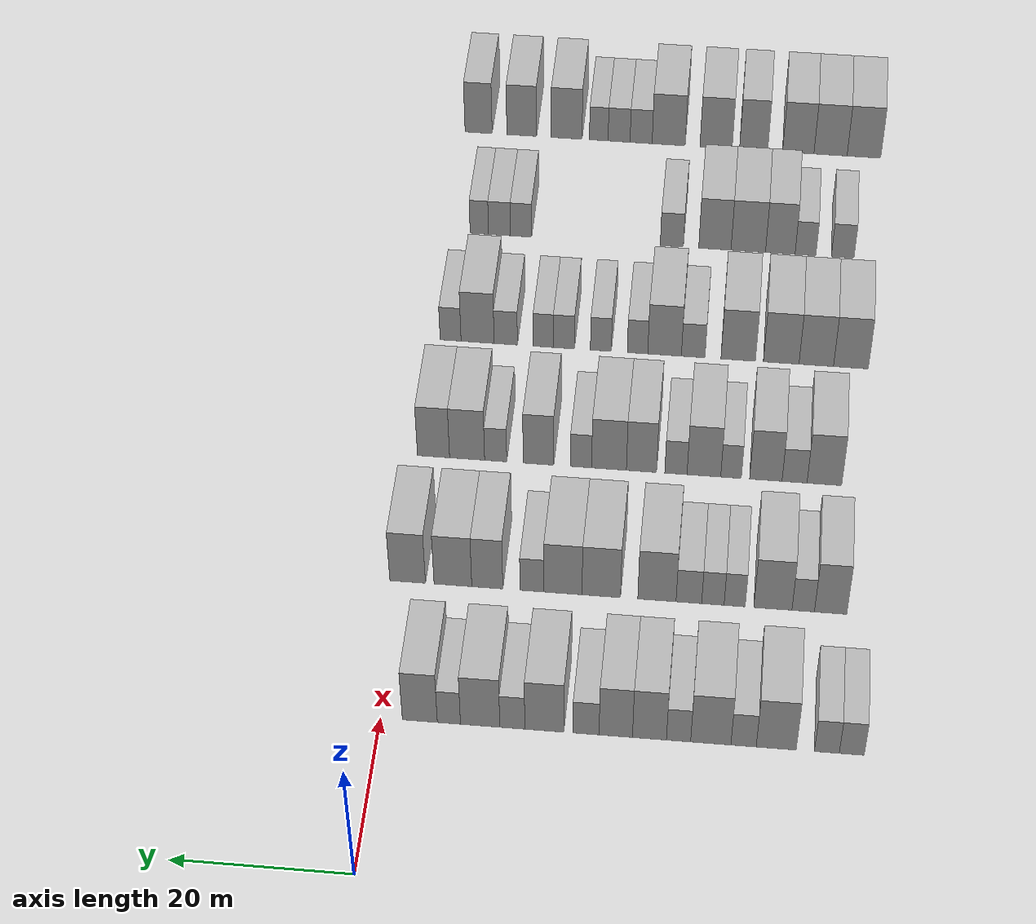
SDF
<sdf version="1.6">
 <world name="default">
  <model name="building_80">
   <static>1</static>
   <pose>25.0000 -52.2230 0 0.000000 0.000000 0.000000</pose>
   <link name="link">
    <pose>0 0 3.00 0 0 0</pose>
    <collision name="collision"><geometry><box><size>10.0000 2.7459 6.0000</size></box></geometry></collision>
    <visual name="visual">
     <cast_shadows>0</cast_shadows>
     <geometry><box><size>10.0000 2.7459 6.0000</size></box></geometry>
     <material>
      <script>
       <uri>model://HANNAS_wall/materials/scripts</uri>
       <uri>model://HANNAS_wall/materials/textures</uri>
       <name>vrc/HANNAS_wall</name>
      </script>
     </material>
    </visual>
   </link>
  </model>
  <model name="building_81">
   <static>1</static>
   <pose>25.0000 -49.4859 0 0.000000 0.000000 0.000000</pose>
   <link name="link">
    <pose>0 0 3.00 0 0 0</pose>
    <collision name="collision"><geometry><box><size>10.0000 2.7282 6.0000</size></box></geometry></collision>
    <visual name="visual">
     <cast_shadows>0</cast_shadows>
     <geometry><box><size>10.0000 2.7282 6.0000</size></box></geometry>
     <material>
      <script>
       <uri>model://HANNAS_wall/materials/scripts</uri>
       <uri>model://HANNAS_wall/materials/textures</uri>
       <name>vrc/HANNAS_wall</name>
      </script>
     </material>
    </visual>
   </link>
  </model>
  <model name="building_82">
   <static>1</static>
   <pose>25.0000 -43.9226 0 0.000000 0.000000 0.000000</pose>
   <link name="link">
    <pose>0 0 4.50 0 0 0</pose>
    <collision name="collision"><geometry><box><size>10.0000 4.3985 9.0000</size></box></geometry></collision>
    <visual name="visual">
     <cast_shadows>0</cast_shadows>
     <geometry><box><size>10.0000 4.3985 9.0000</size></box></geometry>
     <material>
      <script>
       <uri>model://HANNAS_wall/materials/scripts</uri>
       <uri>model://HANNAS_wall/materials/textures</uri>
       <name>vrc/HANNAS_wall</name>
      </script>
     </material>
    </visual>
   </link>
  </model>
  <model name="building_83">
   <static>1</static>
   <pose>25.0000 -40.3293 0 0.000000 0.000000 0.000000</pose>
   <link name="link">
    <pose>0 0 3.00 0 0 0</pose>
    <collision name="collision"><geometry><box><size>10.0000 2.7882 6.0000</size></box></geometry></collision>
    <visual name="visual">
     <cast_shadows>0</cast_shadows>
     <geometry><box><size>10.0000 2.7882 6.0000</size></box></geometry>
     <material>
      <script>
       <uri>model://HANNAS_wall/materials/scripts</uri>
       <uri>model://HANNAS_wall/materials/textures</uri>
       <name>vrc/HANNAS_wall</name>
      </script>
     </material>
    </visual>
   </link>
  </model>
  <model name="building_84">
   <static>1</static>
   <pose>25.0000 -36.7137 0 0.000000 0.000000 0.000000</pose>
   <link name="link">
    <pose>0 0 4.50 0 0 0</pose>
    <collision name="collision"><geometry><box><size>10.0000 4.4429 9.0000</size></box></geometry></collision>
    <visual name="visual">
     <cast_shadows>0</cast_shadows>
     <geometry><box><size>10.0000 4.4429 9.0000</size></box></geometry>
     <material>
      <script>
       <uri>model://HANNAS_wall/materials/scripts</uri>
       <uri>model://HANNAS_wall/materials/textures</uri>
       <name>vrc/HANNAS_wall</name>
      </script>
     </material>
    </visual>
   </link>
  </model>
  <model name="building_85">
   <static>1</static>
   <pose>25.0000 -33.1544 0 0.000000 0.000000 0.000000</pose>
   <link name="link">
    <pose>0 0 3.00 0 0 0</pose>
    <collision name="collision"><geometry><box><size>10.0000 2.6756 6.0000</size></box></geometry></collision>
    <visual name="visual">
     <cast_shadows>0</cast_shadows>
     <geometry><box><size>10.0000 2.6756 6.0000</size></box></geometry>
     <material>
      <script>
       <uri>model://HANNAS_wall/materials/scripts</uri>
       <uri>model://HANNAS_wall/materials/textures</uri>
       <name>vrc/HANNAS_wall</name>
      </script>
     </material>
    </visual>
   </link>
  </model>
  <model name="building_86">
   <static>1</static>
   <pose>25.0000 -29.9390 0 0.000000 0.000000 0.000000</pose>
   <link name="link">
    <pose>0 0 4.50 0 0 0</pose>
    <collision name="collision"><geometry><box><size>10.0000 3.7551 9.0000</size></box></geometry></collision>
    <visual name="visual">
     <cast_shadows>0</cast_shadows>
     <geometry><box><size>10.0000 3.7551 9.0000</size></box></geometry>
     <material>
      <script>
       <uri>model://HANNAS_wall/materials/scripts</uri>
       <uri>model://HANNAS_wall/materials/textures</uri>
       <name>vrc/HANNAS_wall</name>
      </script>
     </material>
    </visual>
   </link>
  </model>
  <model name="building_87">
   <static>1</static>
   <pose>25.0000 -26.2094 0 0.000000 0.000000 0.000000</pose>
   <link name="link">
    <pose>0 0 4.50 0 0 0</pose>
    <collision name="collision"><geometry><box><size>10.0000 3.7041 9.0000</size></box></geometry></collision>
    <visual name="visual">
     <cast_shadows>0</cast_shadows>
     <geometry><box><size>10.0000 3.7041 9.0000</size></box></geometry>
     <material>
      <script>
       <uri>model://HANNAS_wall/materials/scripts</uri>
       <uri>model://HANNAS_wall/materials/textures</uri>
       <name>vrc/HANNAS_wall</name>
      </script>
     </material>
    </visual>
   </link>
  </model>
  <model name="building_88">
   <static>1</static>
   <pose>25.0000 -22.9039 0 0.000000 0.000000 0.000000</pose>
   <link name="link">
    <pose>0 0 3.00 0 0 0</pose>
    <collision name="collision"><geometry><box><size>10.0000 2.9069 6.0000</size></box></geometry></collision>
    <visual name="visual">
     <cast_shadows>0</cast_shadows>
     <geometry><box><size>10.0000 2.9069 6.0000</size></box></geometry>
     <material>
      <script>
       <uri>model://HANNAS_wall/materials/scripts</uri>
       <uri>model://HANNAS_wall/materials/textures</uri>
       <name>vrc/HANNAS_wall</name>
      </script>
     </material>
    </visual>
   </link>
  </model>
  <model name="building_89">
   <static>1</static>
   <pose>25.0000 -18.2821 0 0.000000 0.000000 0.000000</pose>
   <link name="link">
    <pose>0 0 4.50 0 0 0</pose>
    <collision name="collision"><geometry><box><size>10.0000 4.3369 9.0000</size></box></geometry></collision>
    <visual name="visual">
     <cast_shadows>0</cast_shadows>
     <geometry><box><size>10.0000 4.3369 9.0000</size></box></geometry>
     <material>
      <script>
       <uri>model://HANNAS_wall/materials/scripts</uri>
       <uri>model://HANNAS_wall/materials/textures</uri>
       <name>vrc/HANNAS_wall</name>
      </script>
     </material>
    </visual>
   </link>
  </model>
  <model name="building_90">
   <static>1</static>
   <pose>25.0000 -14.7182 0 0.000000 0.000000 0.000000</pose>
   <link name="link">
    <pose>0 0 3.00 0 0 0</pose>
    <collision name="collision"><geometry><box><size>10.0000 2.7908 6.0000</size></box></geometry></collision>
    <visual name="visual">
     <cast_shadows>0</cast_shadows>
     <geometry><box><size>10.0000 2.7908 6.0000</size></box></geometry>
     <material>
      <script>
       <uri>model://HANNAS_wall/materials/scripts</uri>
       <uri>model://HANNAS_wall/materials/textures</uri>
       <name>vrc/HANNAS_wall</name>
      </script>
     </material>
    </visual>
   </link>
  </model>
  <model name="building_91">
   <static>1</static>
   <pose>25.0000 -11.1315 0 0.000000 0.000000 0.000000</pose>
   <link name="link">
    <pose>0 0 4.50 0 0 0</pose>
    <collision name="collision"><geometry><box><size>10.0000 4.3827 9.0000</size></box></geometry></collision>
    <visual name="visual">
     <cast_shadows>0</cast_shadows>
     <geometry><box><size>10.0000 4.3827 9.0000</size></box></geometry>
     <material>
      <script>
       <uri>model://HANNAS_wall/materials/scripts</uri>
       <uri>model://HANNAS_wall/materials/textures</uri>
       <name>vrc/HANNAS_wall</name>
      </script>
     </material>
    </visual>
   </link>
  </model>
  <model name="building_92">
   <static>1</static>
   <pose>25.0000 -7.6468 0 0.000000 0.000000 0.000000</pose>
   <link name="link">
    <pose>0 0 3.00 0 0 0</pose>
    <collision name="collision"><geometry><box><size>10.0000 2.5868 6.0000</size></box></geometry></collision>
    <visual name="visual">
     <cast_shadows>0</cast_shadows>
     <geometry><box><size>10.0000 2.5868 6.0000</size></box></geometry>
     <material>
      <script>
       <uri>model://HANNAS_wall/materials/scripts</uri>
       <uri>model://HANNAS_wall/materials/textures</uri>
       <name>vrc/HANNAS_wall</name>
      </script>
     </material>
    </visual>
   </link>
  </model>
  <model name="building_93">
   <static>1</static>
   <pose>25.0000 -4.4018 0 0.000000 0.000000 0.000000</pose>
   <link name="link">
    <pose>0 0 4.50 0 0 0</pose>
    <collision name="collision"><geometry><box><size>10.0000 3.9031 9.0000</size></box></geometry></collision>
    <visual name="visual">
     <cast_shadows>0</cast_shadows>
     <geometry><box><size>10.0000 3.9031 9.0000</size></box></geometry>
     <material>
      <script>
       <uri>model://HANNAS_wall/materials/scripts</uri>
       <uri>model://HANNAS_wall/materials/textures</uri>
       <name>vrc/HANNAS_wall</name>
      </script>
     </material>
    </visual>
   </link>
  </model>
  <model name="building_242">
   <static>1</static>
   <pose>44.0000 -49.5031 0 0.000000 0.000000 0.000000</pose>
   <link name="link">
    <pose>0 0 4.50 0 0 0</pose>
    <collision name="collision"><geometry><box><size>10.0000 3.6994 9.0000</size></box></geometry></collision>
    <visual name="visual">
     <cast_shadows>0</cast_shadows>
     <geometry><box><size>10.0000 3.6994 9.0000</size></box></geometry>
     <material>
      <script>
       <uri>model://HANNAS_wall/materials/scripts</uri>
       <uri>model://HANNAS_wall/materials/textures</uri>
       <name>vrc/HANNAS_wall</name>
      </script>
     </material>
    </visual>
   </link>
  </model>
  <model name="building_243">
   <static>1</static>
   <pose>44.0000 -46.3624 0 0.000000 0.000000 0.000000</pose>
   <link name="link">
    <pose>0 0 3.00 0 0 0</pose>
    <collision name="collision"><geometry><box><size>10.0000 2.5820 6.0000</size></box></geometry></collision>
    <visual name="visual">
     <cast_shadows>0</cast_shadows>
     <geometry><box><size>10.0000 2.5820 6.0000</size></box></geometry>
     <material>
      <script>
       <uri>model://HANNAS_wall/materials/scripts</uri>
       <uri>model://HANNAS_wall/materials/textures</uri>
       <name>vrc/HANNAS_wall</name>
      </script>
     </material>
    </visual>
   </link>
  </model>
  <model name="building_244">
   <static>1</static>
   <pose>44.0000 -42.8844 0 0.000000 0.000000 0.000000</pose>
   <link name="link">
    <pose>0 0 4.50 0 0 0</pose>
    <collision name="collision"><geometry><box><size>10.0000 4.3739 9.0000</size></box></geometry></collision>
    <visual name="visual">
     <cast_shadows>0</cast_shadows>
     <geometry><box><size>10.0000 4.3739 9.0000</size></box></geometry>
     <material>
      <script>
       <uri>model://HANNAS_wall/materials/scripts</uri>
       <uri>model://HANNAS_wall/materials/textures</uri>
       <name>vrc/HANNAS_wall</name>
      </script>
     </material>
    </visual>
   </link>
  </model>
  <model name="building_245">
   <static>1</static>
   <pose>44.0000 -38.4841 0 0.000000 0.000000 0.000000</pose>
   <link name="link">
    <pose>0 0 3.00 0 0 0</pose>
    <collision name="collision"><geometry><box><size>10.0000 2.4269 6.0000</size></box></geometry></collision>
    <visual name="visual">
     <cast_shadows>0</cast_shadows>
     <geometry><box><size>10.0000 2.4269 6.0000</size></box></geometry>
     <material>
      <script>
       <uri>model://HANNAS_wall/materials/scripts</uri>
       <uri>model://HANNAS_wall/materials/textures</uri>
       <name>vrc/HANNAS_wall</name>
      </script>
     </material>
    </visual>
   </link>
  </model>
  <model name="building_246">
   <static>1</static>
   <pose>44.0000 -35.9782 0 0.000000 0.000000 0.000000</pose>
   <link name="link">
    <pose>0 0 3.00 0 0 0</pose>
    <collision name="collision"><geometry><box><size>10.0000 2.5849 6.0000</size></box></geometry></collision>
    <visual name="visual">
     <cast_shadows>0</cast_shadows>
     <geometry><box><size>10.0000 2.5849 6.0000</size></box></geometry>
     <material>
      <script>
       <uri>model://HANNAS_wall/materials/scripts</uri>
       <uri>model://HANNAS_wall/materials/textures</uri>
       <name>vrc/HANNAS_wall</name>
      </script>
     </material>
    </visual>
   </link>
  </model>
  <model name="building_247">
   <static>1</static>
   <pose>44.0000 -33.2125 0 0.000000 0.000000 0.000000</pose>
   <link name="link">
    <pose>0 0 3.00 0 0 0</pose>
    <collision name="collision"><geometry><box><size>10.0000 2.9464 6.0000</size></box></geometry></collision>
    <visual name="visual">
     <cast_shadows>0</cast_shadows>
     <geometry><box><size>10.0000 2.9464 6.0000</size></box></geometry>
     <material>
      <script>
       <uri>model://HANNAS_wall/materials/scripts</uri>
       <uri>model://HANNAS_wall/materials/textures</uri>
       <name>vrc/HANNAS_wall</name>
      </script>
     </material>
    </visual>
   </link>
  </model>
  <model name="building_248">
   <static>1</static>
   <pose>44.0000 -29.5308 0 0.000000 0.000000 0.000000</pose>
   <link name="link">
    <pose>0 0 4.50 0 0 0</pose>
    <collision name="collision"><geometry><box><size>10.0000 4.4172 9.0000</size></box></geometry></collision>
    <visual name="visual">
     <cast_shadows>0</cast_shadows>
     <geometry><box><size>10.0000 4.4172 9.0000</size></box></geometry>
     <material>
      <script>
       <uri>model://HANNAS_wall/materials/scripts</uri>
       <uri>model://HANNAS_wall/materials/textures</uri>
       <name>vrc/HANNAS_wall</name>
      </script>
     </material>
    </visual>
   </link>
  </model>
  <model name="building_249">
   <static>1</static>
   <pose>44.0000 -23.0964 0 0.000000 0.000000 0.000000</pose>
   <link name="link">
    <pose>0 0 4.50 0 0 0</pose>
    <collision name="collision"><geometry><box><size>10.0000 4.4516 9.0000</size></box></geometry></collision>
    <visual name="visual">
     <cast_shadows>0</cast_shadows>
     <geometry><box><size>10.0000 4.4516 9.0000</size></box></geometry>
     <material>
      <script>
       <uri>model://HANNAS_wall/materials/scripts</uri>
       <uri>model://HANNAS_wall/materials/textures</uri>
       <name>vrc/HANNAS_wall</name>
      </script>
     </material>
    </visual>
   </link>
  </model>
  <model name="building_250">
   <static>1</static>
   <pose>44.0000 -18.6566 0 0.000000 0.000000 0.000000</pose>
   <link name="link">
    <pose>0 0 4.50 0 0 0</pose>
    <collision name="collision"><geometry><box><size>10.0000 4.4278 9.0000</size></box></geometry></collision>
    <visual name="visual">
     <cast_shadows>0</cast_shadows>
     <geometry><box><size>10.0000 4.4278 9.0000</size></box></geometry>
     <material>
      <script>
       <uri>model://HANNAS_wall/materials/scripts</uri>
       <uri>model://HANNAS_wall/materials/textures</uri>
       <name>vrc/HANNAS_wall</name>
      </script>
     </material>
    </visual>
   </link>
  </model>
  <model name="building_251">
   <static>1</static>
   <pose>44.0000 -15.0603 0 0.000000 0.000000 0.000000</pose>
   <link name="link">
    <pose>0 0 3.00 0 0 0</pose>
    <collision name="collision"><geometry><box><size>10.0000 2.7650 6.0000</size></box></geometry></collision>
    <visual name="visual">
     <cast_shadows>0</cast_shadows>
     <geometry><box><size>10.0000 2.7650 6.0000</size></box></geometry>
     <material>
      <script>
       <uri>model://HANNAS_wall/materials/scripts</uri>
       <uri>model://HANNAS_wall/materials/textures</uri>
       <name>vrc/HANNAS_wall</name>
      </script>
     </material>
    </visual>
   </link>
  </model>
  <model name="building_252">
   <static>1</static>
   <pose>44.0000 -9.8714 0 0.000000 0.000000 0.000000</pose>
   <link name="link">
    <pose>0 0 4.50 0 0 0</pose>
    <collision name="collision"><geometry><box><size>10.0000 3.6129 9.0000</size></box></geometry></collision>
    <visual name="visual">
     <cast_shadows>0</cast_shadows>
     <geometry><box><size>10.0000 3.6129 9.0000</size></box></geometry>
     <material>
      <script>
       <uri>model://HANNAS_wall/materials/scripts</uri>
       <uri>model://HANNAS_wall/materials/textures</uri>
       <name>vrc/HANNAS_wall</name>
      </script>
     </material>
    </visual>
   </link>
  </model>
  <model name="building_253">
   <static>1</static>
   <pose>44.0000 -5.8670 0 0.000000 0.000000 0.000000</pose>
   <link name="link">
    <pose>0 0 4.50 0 0 0</pose>
    <collision name="collision"><geometry><box><size>10.0000 4.3958 9.0000</size></box></geometry></collision>
    <visual name="visual">
     <cast_shadows>0</cast_shadows>
     <geometry><box><size>10.0000 4.3958 9.0000</size></box></geometry>
     <material>
      <script>
       <uri>model://HANNAS_wall/materials/scripts</uri>
       <uri>model://HANNAS_wall/materials/textures</uri>
       <name>vrc/HANNAS_wall</name>
      </script>
     </material>
    </visual>
   </link>
  </model>
  <model name="building_254">
   <static>1</static>
   <pose>44.0000 -0.5924 0 0.000000 0.000000 0.000000</pose>
   <link name="link">
    <pose>0 0 4.50 0 0 0</pose>
    <collision name="collision"><geometry><box><size>10.0000 4.1534 9.0000</size></box></geometry></collision>
    <visual name="visual">
     <cast_shadows>0</cast_shadows>
     <geometry><box><size>10.0000 4.1534 9.0000</size></box></geometry>
     <material>
      <script>
       <uri>model://HANNAS_wall/materials/scripts</uri>
       <uri>model://HANNAS_wall/materials/textures</uri>
       <name>vrc/HANNAS_wall</name>
      </script>
     </material>
    </visual>
   </link>
  </model>
  <model name="building_410">
   <static>1</static>
   <pose>63.0000 -48.3579 0 0.000000 0.000000 0.000000</pose>
   <link name="link">
    <pose>0 0 4.50 0 0 0</pose>
    <collision name="collision"><geometry><box><size>10.0000 4.1302 9.0000</size></box></geometry></collision>
    <visual name="visual">
     <cast_shadows>0</cast_shadows>
     <geometry><box><size>10.0000 4.1302 9.0000</size></box></geometry>
     <material>
      <script>
       <uri>model://HANNAS_wall/materials/scripts</uri>
       <uri>model://HANNAS_wall/materials/textures</uri>
       <name>vrc/HANNAS_wall</name>
      </script>
     </material>
    </visual>
   </link>
  </model>
  <model name="building_411">
   <static>1</static>
   <pose>63.0000 -44.7972 0 0.000000 0.000000 0.000000</pose>
   <link name="link">
    <pose>0 0 3.00 0 0 0</pose>
    <collision name="collision"><geometry><box><size>10.0000 2.9913 6.0000</size></box></geometry></collision>
    <visual name="visual">
     <cast_shadows>0</cast_shadows>
     <geometry><box><size>10.0000 2.9913 6.0000</size></box></geometry>
     <material>
      <script>
       <uri>model://HANNAS_wall/materials/scripts</uri>
       <uri>model://HANNAS_wall/materials/textures</uri>
       <name>vrc/HANNAS_wall</name>
      </script>
     </material>
    </visual>
   </link>
  </model>
  <model name="building_412">
   <static>1</static>
   <pose>63.0000 -41.3633 0 0.000000 0.000000 0.000000</pose>
   <link name="link">
    <pose>0 0 4.50 0 0 0</pose>
    <collision name="collision"><geometry><box><size>10.0000 3.8764 9.0000</size></box></geometry></collision>
    <visual name="visual">
     <cast_shadows>0</cast_shadows>
     <geometry><box><size>10.0000 3.8764 9.0000</size></box></geometry>
     <material>
      <script>
       <uri>model://HANNAS_wall/materials/scripts</uri>
       <uri>model://HANNAS_wall/materials/textures</uri>
       <name>vrc/HANNAS_wall</name>
      </script>
     </material>
    </visual>
   </link>
  </model>
  <model name="building_413">
   <static>1</static>
   <pose>63.0000 -37.1923 0 0.000000 0.000000 0.000000</pose>
   <link name="link">
    <pose>0 0 3.00 0 0 0</pose>
    <collision name="collision"><geometry><box><size>10.0000 2.4655 6.0000</size></box></geometry></collision>
    <visual name="visual">
     <cast_shadows>0</cast_shadows>
     <geometry><box><size>10.0000 2.4655 6.0000</size></box></geometry>
     <material>
      <script>
       <uri>model://HANNAS_wall/materials/scripts</uri>
       <uri>model://HANNAS_wall/materials/textures</uri>
       <name>vrc/HANNAS_wall</name>
      </script>
     </material>
    </visual>
   </link>
  </model>
  <model name="building_414">
   <static>1</static>
   <pose>63.0000 -33.9365 0 0.000000 0.000000 0.000000</pose>
   <link name="link">
    <pose>0 0 4.50 0 0 0</pose>
    <collision name="collision"><geometry><box><size>10.0000 4.0460 9.0000</size></box></geometry></collision>
    <visual name="visual">
     <cast_shadows>0</cast_shadows>
     <geometry><box><size>10.0000 4.0460 9.0000</size></box></geometry>
     <material>
      <script>
       <uri>model://HANNAS_wall/materials/scripts</uri>
       <uri>model://HANNAS_wall/materials/textures</uri>
       <name>vrc/HANNAS_wall</name>
      </script>
     </material>
    </visual>
   </link>
  </model>
  <model name="building_415">
   <static>1</static>
   <pose>63.0000 -30.5796 0 0.000000 0.000000 0.000000</pose>
   <link name="link">
    <pose>0 0 3.00 0 0 0</pose>
    <collision name="collision"><geometry><box><size>10.0000 2.6678 6.0000</size></box></geometry></collision>
    <visual name="visual">
     <cast_shadows>0</cast_shadows>
     <geometry><box><size>10.0000 2.6678 6.0000</size></box></geometry>
     <material>
      <script>
       <uri>model://HANNAS_wall/materials/scripts</uri>
       <uri>model://HANNAS_wall/materials/textures</uri>
       <name>vrc/HANNAS_wall</name>
      </script>
     </material>
    </visual>
   </link>
  </model>
  <model name="building_416">
   <static>1</static>
   <pose>63.0000 -26.4331 0 0.000000 0.000000 0.000000</pose>
   <link name="link">
    <pose>0 0 4.50 0 0 0</pose>
    <collision name="collision"><geometry><box><size>10.0000 3.6251 9.0000</size></box></geometry></collision>
    <visual name="visual">
     <cast_shadows>0</cast_shadows>
     <geometry><box><size>10.0000 3.6251 9.0000</size></box></geometry>
     <material>
      <script>
       <uri>model://HANNAS_wall/materials/scripts</uri>
       <uri>model://HANNAS_wall/materials/textures</uri>
       <name>vrc/HANNAS_wall</name>
      </script>
     </material>
    </visual>
   </link>
  </model>
  <model name="building_417">
   <static>1</static>
   <pose>63.0000 -22.5269 0 0.000000 0.000000 0.000000</pose>
   <link name="link">
    <pose>0 0 4.50 0 0 0</pose>
    <collision name="collision"><geometry><box><size>10.0000 4.1874 9.0000</size></box></geometry></collision>
    <visual name="visual">
     <cast_shadows>0</cast_shadows>
     <geometry><box><size>10.0000 4.1874 9.0000</size></box></geometry>
     <material>
      <script>
       <uri>model://HANNAS_wall/materials/scripts</uri>
       <uri>model://HANNAS_wall/materials/textures</uri>
       <name>vrc/HANNAS_wall</name>
      </script>
     </material>
    </visual>
   </link>
  </model>
  <model name="building_418">
   <static>1</static>
   <pose>63.0000 -19.1479 0 0.000000 0.000000 0.000000</pose>
   <link name="link">
    <pose>0 0 3.00 0 0 0</pose>
    <collision name="collision"><geometry><box><size>10.0000 2.5704 6.0000</size></box></geometry></collision>
    <visual name="visual">
     <cast_shadows>0</cast_shadows>
     <geometry><box><size>10.0000 2.5704 6.0000</size></box></geometry>
     <material>
      <script>
       <uri>model://HANNAS_wall/materials/scripts</uri>
       <uri>model://HANNAS_wall/materials/textures</uri>
       <name>vrc/HANNAS_wall</name>
      </script>
     </material>
    </visual>
   </link>
  </model>
  <model name="building_419">
   <static>1</static>
   <pose>63.0000 -14.0156 0 0.000000 0.000000 0.000000</pose>
   <link name="link">
    <pose>0 0 4.50 0 0 0</pose>
    <collision name="collision"><geometry><box><size>10.0000 3.6943 9.0000</size></box></geometry></collision>
    <visual name="visual">
     <cast_shadows>0</cast_shadows>
     <geometry><box><size>10.0000 3.6943 9.0000</size></box></geometry>
     <material>
      <script>
       <uri>model://HANNAS_wall/materials/scripts</uri>
       <uri>model://HANNAS_wall/materials/textures</uri>
       <name>vrc/HANNAS_wall</name>
      </script>
     </material>
    </visual>
   </link>
  </model>
  <model name="building_420">
   <static>1</static>
   <pose>63.0000 -8.8281 0 0.000000 0.000000 0.000000</pose>
   <link name="link">
    <pose>0 0 3.00 0 0 0</pose>
    <collision name="collision"><geometry><box><size>10.0000 2.6807 6.0000</size></box></geometry></collision>
    <visual name="visual">
     <cast_shadows>0</cast_shadows>
     <geometry><box><size>10.0000 2.6807 6.0000</size></box></geometry>
     <material>
      <script>
       <uri>model://HANNAS_wall/materials/scripts</uri>
       <uri>model://HANNAS_wall/materials/textures</uri>
       <name>vrc/HANNAS_wall</name>
      </script>
     </material>
    </visual>
   </link>
  </model>
  <model name="building_421">
   <static>1</static>
   <pose>63.0000 -5.3618 0 0.000000 0.000000 0.000000</pose>
   <link name="link">
    <pose>0 0 4.50 0 0 0</pose>
    <collision name="collision"><geometry><box><size>10.0000 4.2520 9.0000</size></box></geometry></collision>
    <visual name="visual">
     <cast_shadows>0</cast_shadows>
     <geometry><box><size>10.0000 4.2520 9.0000</size></box></geometry>
     <material>
      <script>
       <uri>model://HANNAS_wall/materials/scripts</uri>
       <uri>model://HANNAS_wall/materials/textures</uri>
       <name>vrc/HANNAS_wall</name>
      </script>
     </material>
    </visual>
   </link>
  </model>
  <model name="building_422">
   <static>1</static>
   <pose>63.0000 -1.2872 0 0.000000 0.000000 0.000000</pose>
   <link name="link">
    <pose>0 0 4.50 0 0 0</pose>
    <collision name="collision"><geometry><box><size>10.0000 3.8971 9.0000</size></box></geometry></collision>
    <visual name="visual">
     <cast_shadows>0</cast_shadows>
     <geometry><box><size>10.0000 3.8971 9.0000</size></box></geometry>
     <material>
      <script>
       <uri>model://HANNAS_wall/materials/scripts</uri>
       <uri>model://HANNAS_wall/materials/textures</uri>
       <name>vrc/HANNAS_wall</name>
      </script>
     </material>
    </visual>
   </link>
  </model>
  <model name="building_584">
   <static>1</static>
   <pose>82.0000 -51.2250 0 0.000000 0.000000 0.000000</pose>
   <link name="link">
    <pose>0 0 4.50 0 0 0</pose>
    <collision name="collision"><geometry><box><size>10.0000 4.3041 9.0000</size></box></geometry></collision>
    <visual name="visual">
     <cast_shadows>0</cast_shadows>
     <geometry><box><size>10.0000 4.3041 9.0000</size></box></geometry>
     <material>
      <script>
       <uri>model://HANNAS_wall/materials/scripts</uri>
       <uri>model://HANNAS_wall/materials/textures</uri>
       <name>vrc/HANNAS_wall</name>
      </script>
     </material>
    </visual>
   </link>
  </model>
  <model name="building_585">
   <static>1</static>
   <pose>82.0000 -46.9239 0 0.000000 0.000000 0.000000</pose>
   <link name="link">
    <pose>0 0 4.50 0 0 0</pose>
    <collision name="collision"><geometry><box><size>10.0000 4.2980 9.0000</size></box></geometry></collision>
    <visual name="visual">
     <cast_shadows>0</cast_shadows>
     <geometry><box><size>10.0000 4.2980 9.0000</size></box></geometry>
     <material>
      <script>
       <uri>model://HANNAS_wall/materials/scripts</uri>
       <uri>model://HANNAS_wall/materials/textures</uri>
       <name>vrc/HANNAS_wall</name>
      </script>
     </material>
    </visual>
   </link>
  </model>
  <model name="building_586">
   <static>1</static>
   <pose>82.0000 -42.5647 0 0.000000 0.000000 0.000000</pose>
   <link name="link">
    <pose>0 0 4.50 0 0 0</pose>
    <collision name="collision"><geometry><box><size>10.0000 4.4205 9.0000</size></box></geometry></collision>
    <visual name="visual">
     <cast_shadows>0</cast_shadows>
     <geometry><box><size>10.0000 4.4205 9.0000</size></box></geometry>
     <material>
      <script>
       <uri>model://HANNAS_wall/materials/scripts</uri>
       <uri>model://HANNAS_wall/materials/textures</uri>
       <name>vrc/HANNAS_wall</name>
      </script>
     </material>
    </visual>
   </link>
  </model>
  <model name="building_587">
   <static>1</static>
   <pose>82.0000 -37.2080 0 0.000000 0.000000 0.000000</pose>
   <link name="link">
    <pose>0 0 4.50 0 0 0</pose>
    <collision name="collision"><geometry><box><size>10.0000 4.2928 9.0000</size></box></geometry></collision>
    <visual name="visual">
     <cast_shadows>0</cast_shadows>
     <geometry><box><size>10.0000 4.2928 9.0000</size></box></geometry>
     <material>
      <script>
       <uri>model://HANNAS_wall/materials/scripts</uri>
       <uri>model://HANNAS_wall/materials/textures</uri>
       <name>vrc/HANNAS_wall</name>
      </script>
     </material>
    </visual>
   </link>
  </model>
  <model name="building_588">
   <static>1</static>
   <pose>82.0000 -31.5919 0 0.000000 0.000000 0.000000</pose>
   <link name="link">
    <pose>0 0 3.00 0 0 0</pose>
    <collision name="collision"><geometry><box><size>10.0000 2.9395 6.0000</size></box></geometry></collision>
    <visual name="visual">
     <cast_shadows>0</cast_shadows>
     <geometry><box><size>10.0000 2.9395 6.0000</size></box></geometry>
     <material>
      <script>
       <uri>model://HANNAS_wall/materials/scripts</uri>
       <uri>model://HANNAS_wall/materials/textures</uri>
       <name>vrc/HANNAS_wall</name>
      </script>
     </material>
    </visual>
   </link>
  </model>
  <model name="building_589">
   <static>1</static>
   <pose>82.0000 -28.0153 0 0.000000 0.000000 0.000000</pose>
   <link name="link">
    <pose>0 0 4.50 0 0 0</pose>
    <collision name="collision"><geometry><box><size>10.0000 4.2137 9.0000</size></box></geometry></collision>
    <visual name="visual">
     <cast_shadows>0</cast_shadows>
     <geometry><box><size>10.0000 4.2137 9.0000</size></box></geometry>
     <material>
      <script>
       <uri>model://HANNAS_wall/materials/scripts</uri>
       <uri>model://HANNAS_wall/materials/textures</uri>
       <name>vrc/HANNAS_wall</name>
      </script>
     </material>
    </visual>
   </link>
  </model>
  <model name="building_590">
   <static>1</static>
   <pose>82.0000 -24.6295 0 0.000000 0.000000 0.000000</pose>
   <link name="link">
    <pose>0 0 3.00 0 0 0</pose>
    <collision name="collision"><geometry><box><size>10.0000 2.5579 6.0000</size></box></geometry></collision>
    <visual name="visual">
     <cast_shadows>0</cast_shadows>
     <geometry><box><size>10.0000 2.5579 6.0000</size></box></geometry>
     <material>
      <script>
       <uri>model://HANNAS_wall/materials/scripts</uri>
       <uri>model://HANNAS_wall/materials/textures</uri>
       <name>vrc/HANNAS_wall</name>
      </script>
     </material>
    </visual>
   </link>
  </model>
  <model name="building_591">
   <static>1</static>
   <pose>82.0000 -20.0391 0 0.000000 0.000000 0.000000</pose>
   <link name="link">
    <pose>0 0 3.00 0 0 0</pose>
    <collision name="collision"><geometry><box><size>10.0000 2.6228 6.0000</size></box></geometry></collision>
    <visual name="visual">
     <cast_shadows>0</cast_shadows>
     <geometry><box><size>10.0000 2.6228 6.0000</size></box></geometry>
     <material>
      <script>
       <uri>model://HANNAS_wall/materials/scripts</uri>
       <uri>model://HANNAS_wall/materials/textures</uri>
       <name>vrc/HANNAS_wall</name>
      </script>
     </material>
    </visual>
   </link>
  </model>
  <model name="building_592">
   <static>1</static>
   <pose>82.0000 -15.3962 0 0.000000 0.000000 0.000000</pose>
   <link name="link">
    <pose>0 0 3.00 0 0 0</pose>
    <collision name="collision"><geometry><box><size>10.0000 2.6630 6.0000</size></box></geometry></collision>
    <visual name="visual">
     <cast_shadows>0</cast_shadows>
     <geometry><box><size>10.0000 2.6630 6.0000</size></box></geometry>
     <material>
      <script>
       <uri>model://HANNAS_wall/materials/scripts</uri>
       <uri>model://HANNAS_wall/materials/textures</uri>
       <name>vrc/HANNAS_wall</name>
      </script>
     </material>
    </visual>
   </link>
  </model>
  <model name="building_593">
   <static>1</static>
   <pose>82.0000 -12.8065 0 0.000000 0.000000 0.000000</pose>
   <link name="link">
    <pose>0 0 3.00 0 0 0</pose>
    <collision name="collision"><geometry><box><size>10.0000 2.5164 6.0000</size></box></geometry></collision>
    <visual name="visual">
     <cast_shadows>0</cast_shadows>
     <geometry><box><size>10.0000 2.5164 6.0000</size></box></geometry>
     <material>
      <script>
       <uri>model://HANNAS_wall/materials/scripts</uri>
       <uri>model://HANNAS_wall/materials/textures</uri>
       <name>vrc/HANNAS_wall</name>
      </script>
     </material>
    </visual>
   </link>
  </model>
  <model name="building_594">
   <static>1</static>
   <pose>82.0000 -8.0805 0 0.000000 0.000000 0.000000</pose>
   <link name="link">
    <pose>0 0 3.00 0 0 0</pose>
    <collision name="collision"><geometry><box><size>10.0000 2.9356 6.0000</size></box></geometry></collision>
    <visual name="visual">
     <cast_shadows>0</cast_shadows>
     <geometry><box><size>10.0000 2.9356 6.0000</size></box></geometry>
     <material>
      <script>
       <uri>model://HANNAS_wall/materials/scripts</uri>
       <uri>model://HANNAS_wall/materials/textures</uri>
       <name>vrc/HANNAS_wall</name>
      </script>
     </material>
    </visual>
   </link>
  </model>
  <model name="building_595">
   <static>1</static>
   <pose>82.0000 -4.5262 0 0.000000 0.000000 0.000000</pose>
   <link name="link">
    <pose>0 0 4.50 0 0 0</pose>
    <collision name="collision"><geometry><box><size>10.0000 4.1729 9.0000</size></box></geometry></collision>
    <visual name="visual">
     <cast_shadows>0</cast_shadows>
     <geometry><box><size>10.0000 4.1729 9.0000</size></box></geometry>
     <material>
      <script>
       <uri>model://HANNAS_wall/materials/scripts</uri>
       <uri>model://HANNAS_wall/materials/textures</uri>
       <name>vrc/HANNAS_wall</name>
      </script>
     </material>
    </visual>
   </link>
  </model>
  <model name="building_596">
   <static>1</static>
   <pose>82.0000 -1.1222 0 0.000000 0.000000 0.000000</pose>
   <link name="link">
    <pose>0 0 3.00 0 0 0</pose>
    <collision name="collision"><geometry><box><size>10.0000 2.6352 6.0000</size></box></geometry></collision>
    <visual name="visual">
     <cast_shadows>0</cast_shadows>
     <geometry><box><size>10.0000 2.6352 6.0000</size></box></geometry>
     <material>
      <script>
       <uri>model://HANNAS_wall/materials/scripts</uri>
       <uri>model://HANNAS_wall/materials/textures</uri>
       <name>vrc/HANNAS_wall</name>
      </script>
     </material>
    </visual>
   </link>
  </model>
  <model name="building_752">
   <static>1</static>
   <pose>101.0000 -49.8601 0 0.000000 0.000000 0.000000</pose>
   <link name="link">
    <pose>0 0 3.00 0 0 0</pose>
    <collision name="collision"><geometry><box><size>10.0000 2.9209 6.0000</size></box></geometry></collision>
    <visual name="visual">
     <cast_shadows>0</cast_shadows>
     <geometry><box><size>10.0000 2.9209 6.0000</size></box></geometry>
     <material>
      <script>
       <uri>model://HANNAS_wall/materials/scripts</uri>
       <uri>model://HANNAS_wall/materials/textures</uri>
       <name>vrc/HANNAS_wall</name>
      </script>
     </material>
    </visual>
   </link>
  </model>
  <model name="building_753">
   <static>1</static>
   <pose>101.0000 -45.0596 0 0.000000 0.000000 0.000000</pose>
   <link name="link">
    <pose>0 0 3.00 0 0 0</pose>
    <collision name="collision"><geometry><box><size>10.0000 2.6801 6.0000</size></box></geometry></collision>
    <visual name="visual">
     <cast_shadows>0</cast_shadows>
     <geometry><box><size>10.0000 2.6801 6.0000</size></box></geometry>
     <material>
      <script>
       <uri>model://HANNAS_wall/materials/scripts</uri>
       <uri>model://HANNAS_wall/materials/textures</uri>
       <name>vrc/HANNAS_wall</name>
      </script>
     </material>
    </visual>
   </link>
  </model>
  <model name="building_754">
   <static>1</static>
   <pose>101.0000 -41.8066 0 0.000000 0.000000 0.000000</pose>
   <link name="link">
    <pose>0 0 4.50 0 0 0</pose>
    <collision name="collision"><geometry><box><size>10.0000 3.8259 9.0000</size></box></geometry></collision>
    <visual name="visual">
     <cast_shadows>0</cast_shadows>
     <geometry><box><size>10.0000 3.8259 9.0000</size></box></geometry>
     <material>
      <script>
       <uri>model://HANNAS_wall/materials/scripts</uri>
       <uri>model://HANNAS_wall/materials/textures</uri>
       <name>vrc/HANNAS_wall</name>
      </script>
     </material>
    </visual>
   </link>
  </model>
  <model name="building_755">
   <static>1</static>
   <pose>101.0000 -37.6634 0 0.000000 0.000000 0.000000</pose>
   <link name="link">
    <pose>0 0 4.50 0 0 0</pose>
    <collision name="collision"><geometry><box><size>10.0000 4.4605 9.0000</size></box></geometry></collision>
    <visual name="visual">
     <cast_shadows>0</cast_shadows>
     <geometry><box><size>10.0000 4.4605 9.0000</size></box></geometry>
     <material>
      <script>
       <uri>model://HANNAS_wall/materials/scripts</uri>
       <uri>model://HANNAS_wall/materials/textures</uri>
       <name>vrc/HANNAS_wall</name>
      </script>
     </material>
    </visual>
   </link>
  </model>
  <model name="building_756">
   <static>1</static>
   <pose>101.0000 -33.3433 0 0.000000 0.000000 0.000000</pose>
   <link name="link">
    <pose>0 0 4.50 0 0 0</pose>
    <collision name="collision"><geometry><box><size>10.0000 4.1796 9.0000</size></box></geometry></collision>
    <visual name="visual">
     <cast_shadows>0</cast_shadows>
     <geometry><box><size>10.0000 4.1796 9.0000</size></box></geometry>
     <material>
      <script>
       <uri>model://HANNAS_wall/materials/scripts</uri>
       <uri>model://HANNAS_wall/materials/textures</uri>
       <name>vrc/HANNAS_wall</name>
      </script>
     </material>
    </visual>
   </link>
  </model>
  <model name="building_757">
   <static>1</static>
   <pose>101.0000 -27.7571 0 0.000000 0.000000 0.000000</pose>
   <link name="link">
    <pose>0 0 3.00 0 0 0</pose>
    <collision name="collision"><geometry><box><size>10.0000 2.9928 6.0000</size></box></geometry></collision>
    <visual name="visual">
     <cast_shadows>0</cast_shadows>
     <geometry><box><size>10.0000 2.9928 6.0000</size></box></geometry>
     <material>
      <script>
       <uri>model://HANNAS_wall/materials/scripts</uri>
       <uri>model://HANNAS_wall/materials/textures</uri>
       <name>vrc/HANNAS_wall</name>
      </script>
     </material>
    </visual>
   </link>
  </model>
  <model name="building_758">
   <static>1</static>
   <pose>101.0000 -8.1143 0 0.000000 0.000000 0.000000</pose>
   <link name="link">
    <pose>0 0 3.00 0 0 0</pose>
    <collision name="collision"><geometry><box><size>10.0000 2.7643 6.0000</size></box></geometry></collision>
    <visual name="visual">
     <cast_shadows>0</cast_shadows>
     <geometry><box><size>10.0000 2.7643 6.0000</size></box></geometry>
     <material>
      <script>
       <uri>model://HANNAS_wall/materials/scripts</uri>
       <uri>model://HANNAS_wall/materials/textures</uri>
       <name>vrc/HANNAS_wall</name>
      </script>
     </material>
    </visual>
   </link>
  </model>
  <model name="building_759">
   <static>1</static>
   <pose>101.0000 -5.2939 0 0.000000 0.000000 0.000000</pose>
   <link name="link">
    <pose>0 0 3.00 0 0 0</pose>
    <collision name="collision"><geometry><box><size>10.0000 2.8764 6.0000</size></box></geometry></collision>
    <visual name="visual">
     <cast_shadows>0</cast_shadows>
     <geometry><box><size>10.0000 2.8764 6.0000</size></box></geometry>
     <material>
      <script>
       <uri>model://HANNAS_wall/materials/scripts</uri>
       <uri>model://HANNAS_wall/materials/textures</uri>
       <name>vrc/HANNAS_wall</name>
      </script>
     </material>
    </visual>
   </link>
  </model>
  <model name="building_760">
   <static>1</static>
   <pose>101.0000 -2.6508 0 0.000000 0.000000 0.000000</pose>
   <link name="link">
    <pose>0 0 3.00 0 0 0</pose>
    <collision name="collision"><geometry><box><size>10.0000 2.4100 6.0000</size></box></geometry></collision>
    <visual name="visual">
     <cast_shadows>0</cast_shadows>
     <geometry><box><size>10.0000 2.4100 6.0000</size></box></geometry>
     <material>
      <script>
       <uri>model://HANNAS_wall/materials/scripts</uri>
       <uri>model://HANNAS_wall/materials/textures</uri>
       <name>vrc/HANNAS_wall</name>
      </script>
     </material>
    </visual>
   </link>
  </model>
  <model name="building_929">
   <static>1</static>
   <pose>120.0000 -52.3521 0 0.000000 0.000000 0.000000</pose>
   <link name="link">
    <pose>0 0 4.50 0 0 0</pose>
    <collision name="collision"><geometry><box><size>10.0000 4.4880 9.0000</size></box></geometry></collision>
    <visual name="visual">
     <cast_shadows>0</cast_shadows>
     <geometry><box><size>10.0000 4.4880 9.0000</size></box></geometry>
     <material>
      <script>
       <uri>model://HANNAS_wall/materials/scripts</uri>
       <uri>model://HANNAS_wall/materials/textures</uri>
       <name>vrc/HANNAS_wall</name>
      </script>
     </material>
    </visual>
   </link>
  </model>
  <model name="building_930">
   <static>1</static>
   <pose>120.0000 -47.8915 0 0.000000 0.000000 0.000000</pose>
   <link name="link">
    <pose>0 0 4.50 0 0 0</pose>
    <collision name="collision"><geometry><box><size>10.0000 4.4331 9.0000</size></box></geometry></collision>
    <visual name="visual">
     <cast_shadows>0</cast_shadows>
     <geometry><box><size>10.0000 4.4331 9.0000</size></box></geometry>
     <material>
      <script>
       <uri>model://HANNAS_wall/materials/scripts</uri>
       <uri>model://HANNAS_wall/materials/textures</uri>
       <name>vrc/HANNAS_wall</name>
      </script>
     </material>
    </visual>
   </link>
  </model>
  <model name="building_931">
   <static>1</static>
   <pose>120.0000 -43.5761 0 0.000000 0.000000 0.000000</pose>
   <link name="link">
    <pose>0 0 4.50 0 0 0</pose>
    <collision name="collision"><geometry><box><size>10.0000 4.1978 9.0000</size></box></geometry></collision>
    <visual name="visual">
     <cast_shadows>0</cast_shadows>
     <geometry><box><size>10.0000 4.1978 9.0000</size></box></geometry>
     <material>
      <script>
       <uri>model://HANNAS_wall/materials/scripts</uri>
       <uri>model://HANNAS_wall/materials/textures</uri>
       <name>vrc/HANNAS_wall</name>
      </script>
     </material>
    </visual>
   </link>
  </model>
  <model name="building_932">
   <static>1</static>
   <pose>120.0000 -37.5926 0 0.000000 0.000000 0.000000</pose>
   <link name="link">
    <pose>0 0 4.50 0 0 0</pose>
    <collision name="collision"><geometry><box><size>10.0000 3.7692 9.0000</size></box></geometry></collision>
    <visual name="visual">
     <cast_shadows>0</cast_shadows>
     <geometry><box><size>10.0000 3.7692 9.0000</size></box></geometry>
     <material>
      <script>
       <uri>model://HANNAS_wall/materials/scripts</uri>
       <uri>model://HANNAS_wall/materials/textures</uri>
       <name>vrc/HANNAS_wall</name>
      </script>
     </material>
    </visual>
   </link>
  </model>
  <model name="building_933">
   <static>1</static>
   <pose>120.0000 -32.5476 0 0.000000 0.000000 0.000000</pose>
   <link name="link">
    <pose>0 0 4.50 0 0 0</pose>
    <collision name="collision"><geometry><box><size>10.0000 4.3208 9.0000</size></box></geometry></collision>
    <visual name="visual">
     <cast_shadows>0</cast_shadows>
     <geometry><box><size>10.0000 4.3208 9.0000</size></box></geometry>
     <material>
      <script>
       <uri>model://HANNAS_wall/materials/scripts</uri>
       <uri>model://HANNAS_wall/materials/textures</uri>
       <name>vrc/HANNAS_wall</name>
      </script>
     </material>
    </visual>
   </link>
  </model>
  <model name="building_934">
   <static>1</static>
   <pose>120.0000 -26.1653 0 0.000000 0.000000 0.000000</pose>
   <link name="link">
    <pose>0 0 4.50 0 0 0</pose>
    <collision name="collision"><geometry><box><size>10.0000 4.4437 9.0000</size></box></geometry></collision>
    <visual name="visual">
     <cast_shadows>0</cast_shadows>
     <geometry><box><size>10.0000 4.4437 9.0000</size></box></geometry>
     <material>
      <script>
       <uri>model://HANNAS_wall/materials/scripts</uri>
       <uri>model://HANNAS_wall/materials/textures</uri>
       <name>vrc/HANNAS_wall</name>
      </script>
     </material>
    </visual>
   </link>
  </model>
  <model name="building_935">
   <static>1</static>
   <pose>120.0000 -22.4565 0 0.000000 0.000000 0.000000</pose>
   <link name="link">
    <pose>0 0 3.00 0 0 0</pose>
    <collision name="collision"><geometry><box><size>10.0000 2.9741 6.0000</size></box></geometry></collision>
    <visual name="visual">
     <cast_shadows>0</cast_shadows>
     <geometry><box><size>10.0000 2.9741 6.0000</size></box></geometry>
     <material>
      <script>
       <uri>model://HANNAS_wall/materials/scripts</uri>
       <uri>model://HANNAS_wall/materials/textures</uri>
       <name>vrc/HANNAS_wall</name>
      </script>
     </material>
    </visual>
   </link>
  </model>
  <model name="building_936">
   <static>1</static>
   <pose>120.0000 -19.4865 0 0.000000 0.000000 0.000000</pose>
   <link name="link">
    <pose>0 0 3.00 0 0 0</pose>
    <collision name="collision"><geometry><box><size>10.0000 2.9658 6.0000</size></box></geometry></collision>
    <visual name="visual">
     <cast_shadows>0</cast_shadows>
     <geometry><box><size>10.0000 2.9658 6.0000</size></box></geometry>
     <material>
      <script>
       <uri>model://HANNAS_wall/materials/scripts</uri>
       <uri>model://HANNAS_wall/materials/textures</uri>
       <name>vrc/HANNAS_wall</name>
      </script>
     </material>
    </visual>
   </link>
  </model>
  <model name="building_937">
   <static>1</static>
   <pose>120.0000 -16.7440 0 0.000000 0.000000 0.000000</pose>
   <link name="link">
    <pose>0 0 3.00 0 0 0</pose>
    <collision name="collision"><geometry><box><size>10.0000 2.5193 6.0000</size></box></geometry></collision>
    <visual name="visual">
     <cast_shadows>0</cast_shadows>
     <geometry><box><size>10.0000 2.5193 6.0000</size></box></geometry>
     <material>
      <script>
       <uri>model://HANNAS_wall/materials/scripts</uri>
       <uri>model://HANNAS_wall/materials/textures</uri>
       <name>vrc/HANNAS_wall</name>
      </script>
     </material>
    </visual>
   </link>
  </model>
  <model name="building_938">
   <static>1</static>
   <pose>120.0000 -12.4050 0 0.000000 0.000000 0.000000</pose>
   <link name="link">
    <pose>0 0 4.50 0 0 0</pose>
    <collision name="collision"><geometry><box><size>10.0000 4.1587 9.0000</size></box></geometry></collision>
    <visual name="visual">
     <cast_shadows>0</cast_shadows>
     <geometry><box><size>10.0000 4.1587 9.0000</size></box></geometry>
     <material>
      <script>
       <uri>model://HANNAS_wall/materials/scripts</uri>
       <uri>model://HANNAS_wall/materials/textures</uri>
       <name>vrc/HANNAS_wall</name>
      </script>
     </material>
    </visual>
   </link>
  </model>
  <model name="building_939">
   <static>1</static>
   <pose>120.0000 -6.3080 0 0.000000 0.000000 0.000000</pose>
   <link name="link">
    <pose>0 0 4.50 0 0 0</pose>
    <collision name="collision"><geometry><box><size>10.0000 4.0354 9.0000</size></box></geometry></collision>
    <visual name="visual">
     <cast_shadows>0</cast_shadows>
     <geometry><box><size>10.0000 4.0354 9.0000</size></box></geometry>
     <material>
      <script>
       <uri>model://HANNAS_wall/materials/scripts</uri>
       <uri>model://HANNAS_wall/materials/textures</uri>
       <name>vrc/HANNAS_wall</name>
      </script>
     </material>
    </visual>
   </link>
  </model>
  <model name="building_940">
   <static>1</static>
   <pose>120.0000 -0.4534 0 0.000000 0.000000 0.000000</pose>
   <link name="link">
    <pose>0 0 4.50 0 0 0</pose>
    <collision name="collision"><geometry><box><size>10.0000 3.6738 9.0000</size></box></geometry></collision>
    <visual name="visual">
     <cast_shadows>0</cast_shadows>
     <geometry><box><size>10.0000 3.6738 9.0000</size></box></geometry>
     <material>
      <script>
       <uri>model://HANNAS_wall/materials/scripts</uri>
       <uri>model://HANNAS_wall/materials/textures</uri>
       <name>vrc/HANNAS_wall</name>
      </script>
     </material>
    </visual>
   </link>
  </model>
 </world>
</sdf>
